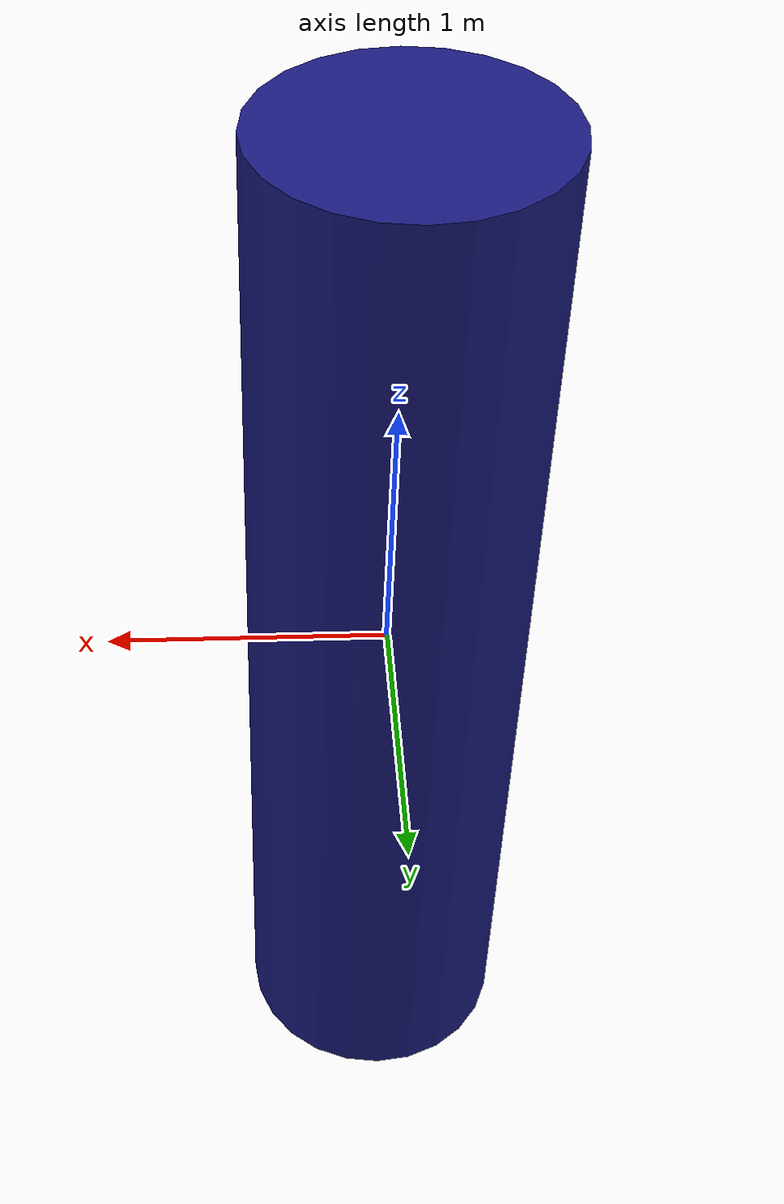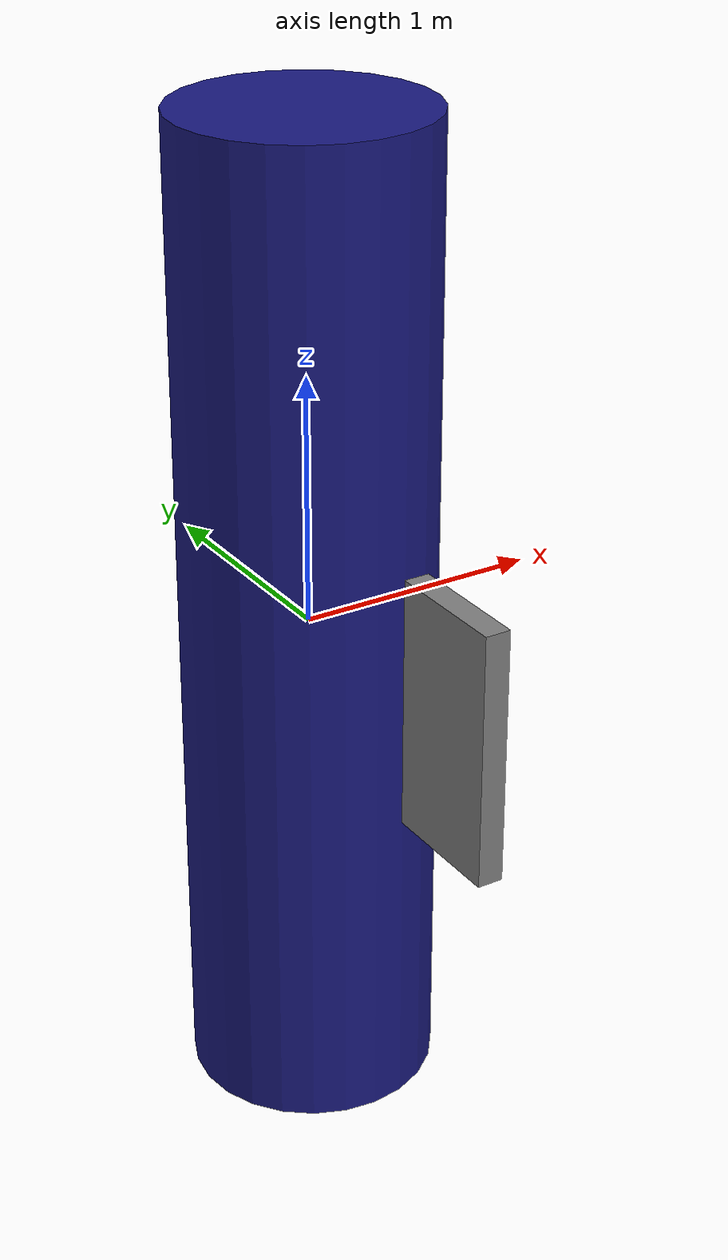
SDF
<sdf version="1.6">
  <model name="submarine">
    <!-- Define the submarine's main link -->
    <link name="body">
      <!-- Collision properties -->
      <collision name="collision">
      	<pose>0 0 -10 0 0 0</pose>
        <geometry>
          <cylinder>
            <radius>0.5</radius>
            <length>4.0</length>
          </cylinder>
        </geometry>
      </collision>

      <!-- Visual properties -->
      <visual name="visual">
        <geometry>
          <cylinder>
            <radius>0.5</radius>
            <length>4.0</length>
          </cylinder>
        </geometry>
        <material>
          <ambient>0.1 0.1 0.5 1</ambient> <!-- Dark blue color -->
          <diffuse>0.1 0.1 0.5 1</diffuse>
          <specular>0.1 0.1 0.5 1</specular>
        </material>
      </visual>

      <!-- Inertial properties -->
      <inertial>
        <mass>20</mass> <!-- Mass in kilograms -->
        <inertia>
          <ixx>208.33</ixx>
          <iyy>208.33</iyy>
          <izz>41.67</izz>
        </inertia>
      </inertial>
    </link>

    <!-- Add a rudder for control -->
    <link name="rudder">
      <pose>0 -1.0 0 0 0 0</pose> <!-- Position relative to the body -->
      <collision name="rudder_collision">
        <geometry>
          <box>
            <size>0.1 0.5 1.0</size>
          </box>
        </geometry>
      </collision>
      <visual name="rudder_visual">
        <geometry>
          <box>
            <size>0.1 0.5 1.0</size>
          </box>
        </geometry>
        <material>
          <ambient>0.5 0.5 0.5 1</ambient> <!-- Gray color -->
        </material>
      </visual>
      <inertial>
        <mass>10.0</mass>
        <inertia>
          <ixx>0.1</ixx>
          <iyy>0.1</iyy>
          <izz>0.1</izz>
        </inertia>
      </inertial>
    </link>

    <!-- Joint to connect the rudder to the body -->
    <joint name="rudder_joint" type="revolute">
      <parent>body</parent>
      <child>rudder</child>
      <axis>
        <xyz>0 0 1</xyz>
        <limit>
          <lower>-0.5</lower>
          <upper>0.5</upper>
        </limit>
      </axis>
    </joint>
  </model>
</sdf>
